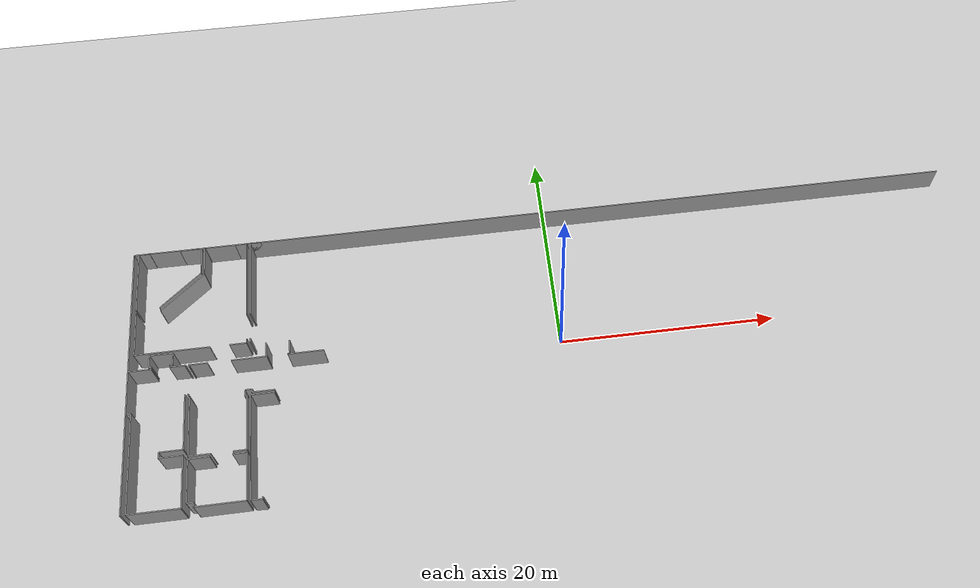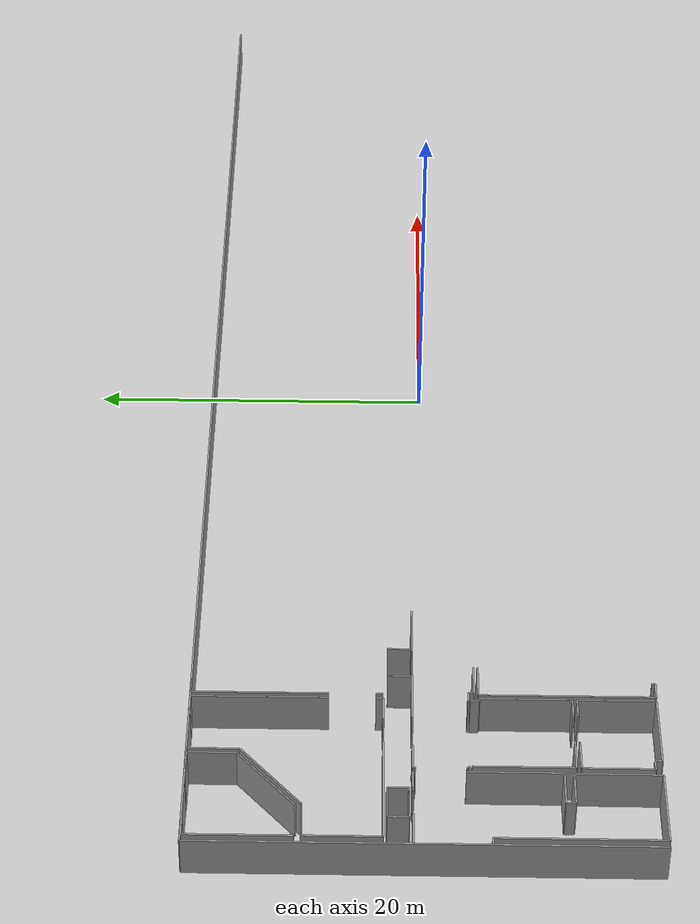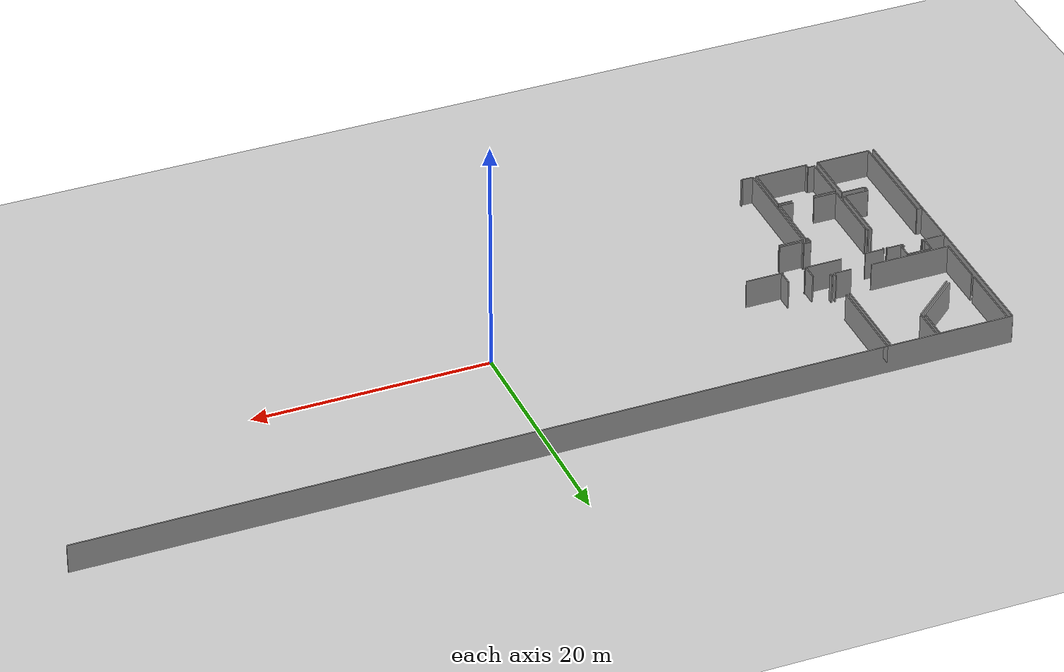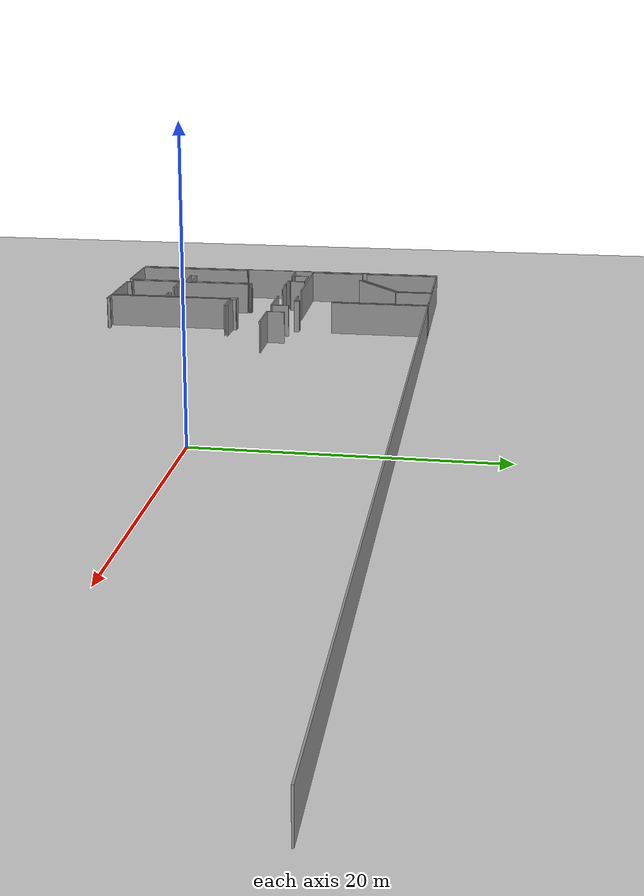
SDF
<sdf version="1.6">
 <world name="default">
  <model name="ground_plane">
   <static>1</static>
   <link name="link">
    <collision name="collision">
     <geometry><plane><normal>0 0 1</normal><size>100 100</size></plane></geometry>
     <surface><friction><ode><mu>100</mu><mu2>50</mu2></ode></friction></surface>
    </collision>
    <visual name="visual">
     <cast_shadows>0</cast_shadows>
     <geometry><plane><normal>0 0 1</normal><size>100 100</size></plane></geometry>
     <material>
      <script><uri>file://media/materials/scripts/gazebo.material</uri><name>Gazebo/Grey</name></script>
     </material>
    </visual>
   </link>
  </model>
  <model name="0510030966_A-40">
   <static>1</static>
   <link name="Wall_0">
    <collision name="Wall_0_Collision">
     <geometry><box><size>5.95988975398 0.1 2.5</size></box></geometry>
     <pose>2.97994487699 0 1.25 0 0 0</pose>
    </collision>
    <visual name="Wall_0_Visual">
     <pose>2.97994487699 0 1.25 0 0 0</pose>
     <geometry><box><size>5.95988975398 0.1 2.5</size></box></geometry>
     <material>
      <script><uri>file://media/materials/scripts/gazebo.material</uri><name>Gazebo/Grey</name></script>
      <ambient>1 1 1 1</ambient>
     </material>
    </visual>
    <pose>0.443397304815 -5.98224378596 0 0 0 1.57079632679</pose>
   </link>
   <link name="Wall_1">
    <collision name="Wall_1_Collision">
     <geometry><box><size>1.03069869051 0.1 2.5</size></box></geometry>
     <pose>0.515349345255 0 1.25 0 0 0</pose>
    </collision>
    <visual name="Wall_1_Visual">
     <pose>0.515349345255 0 1.25 0 0 0</pose>
     <geometry><box><size>1.03069869051 0.1 2.5</size></box></geometry>
     <material>
      <script><uri>file://media/materials/scripts/gazebo.material</uri><name>Gazebo/Grey</name></script>
      <ambient>1 1 1 1</ambient>
     </material>
    </visual>
    <pose>0.443397304815 -0.0223540319815 0 0 0 0.0</pose>
   </link>
   <link name="Wall_2">
    <collision name="Wall_2_Collision">
     <geometry><box><size>2.0100847167 0.1 2.5</size></box></geometry>
     <pose>1.00504235835 0 1.25 0 0 0</pose>
    </collision>
    <visual name="Wall_2_Visual">
     <pose>1.00504235835 0 1.25 0 0 0</pose>
     <geometry><box><size>2.0100847167 0.1 2.5</size></box></geometry>
     <material>
      <script><uri>file://media/materials/scripts/gazebo.material</uri><name>Gazebo/Grey</name></script>
      <ambient>1 1 1 1</ambient>
     </material>
    </visual>
    <pose>4.28016206673 -0.0223540319815 0 0 0 0.0</pose>
   </link>
   <link name="Wall_3">
    <collision name="Wall_3_Collision">
     <geometry><box><size>2.73633673301 0.1 2.5</size></box></geometry>
     <pose>1.3681683665 0 1.25 0 0 0</pose>
    </collision>
    <visual name="Wall_3_Visual">
     <pose>1.3681683665 0 1.25 0 0 0</pose>
     <geometry><box><size>2.73633673301 0.1 2.5</size></box></geometry>
     <material>
      <script><uri>file://media/materials/scripts/gazebo.material</uri><name>Gazebo/Grey</name></script>
      <ambient>1 1 1 1</ambient>
     </material>
    </visual>
    <pose>6.29024678343 -0.0223540319815 0 0 0 -1.57079632679</pose>
   </link>
   <link name="Wall_4">
    <collision name="Wall_4_Collision">
     <geometry><box><size>4.91385763163 0.1 2.5</size></box></geometry>
     <pose>2.45692881581 0 1.25 0 0 0</pose>
    </collision>
    <visual name="Wall_4_Visual">
     <pose>2.45692881581 0 1.25 0 0 0</pose>
     <geometry><box><size>4.91385763163 0.1 2.5</size></box></geometry>
     <material>
      <script><uri>file://media/materials/scripts/gazebo.material</uri><name>Gazebo/Grey</name></script>
      <ambient>1 1 1 1</ambient>
     </material>
    </visual>
    <pose>6.29024678343 -2.75869076499 0 0 0 -2.42257056231</pose>
   </link>
   <link name="Wall_5">
    <collision name="Wall_5_Collision">
     <geometry><box><size>4.35547991312 0.1 2.5</size></box></geometry>
     <pose>2.17773995656 0 1.25 0 0 0</pose>
    </collision>
    <visual name="Wall_5_Visual">
     <pose>2.17773995656 0 1.25 0 0 0</pose>
     <geometry><box><size>4.35547991312 0.1 2.5</size></box></geometry>
     <material>
      <script><uri>file://media/materials/scripts/gazebo.material</uri><name>Gazebo/Grey</name></script>
      <ambient>1 1 1 1</ambient>
     </material>
    </visual>
    <pose>0.461051909619 -10.6772255598 0 0 0 1.57079632679</pose>
   </link>
   <link name="Wall_6">
    <collision name="Wall_6_Collision">
     <geometry><box><size>5.20379099327 0.1 2.5</size></box></geometry>
     <pose>2.60189549664 0 1.25 0 0 0</pose>
    </collision>
    <visual name="Wall_6_Visual">
     <pose>2.60189549664 0 1.25 0 0 0</pose>
     <geometry><box><size>5.20379099327 0.1 2.5</size></box></geometry>
     <material>
      <script><uri>file://media/materials/scripts/gazebo.material</uri><name>Gazebo/Grey</name></script>
      <ambient>1 1 1 1</ambient>
     </material>
    </visual>
    <pose>2.6696556717 -6.32174564668 0 0 0 0.716931152923</pose>
   </link>
   <link name="Wall_7">
    <collision name="Wall_7_Collision">
     <geometry><box><size>2.89726036097 0.1 2.5</size></box></geometry>
     <pose>1.44863018048 0 1.25 0 0 0</pose>
    </collision>
    <visual name="Wall_7_Visual">
     <pose>1.44863018048 0 1.25 0 0 0</pose>
     <geometry><box><size>2.89726036097 0.1 2.5</size></box></geometry>
     <material>
      <script><uri>file://media/materials/scripts/gazebo.material</uri><name>Gazebo/Grey</name></script>
      <ambient>1 1 1 1</ambient>
     </material>
    </visual>
    <pose>6.59240724982 -2.90246783433 0 0 0 1.57079632679</pose>
   </link>
   <link name="Wall_8">
    <collision name="Wall_8_Collision">
     <geometry><box><size>0.0797632504795 0.1 2.5</size></box></geometry>
     <pose>0.0398816252397 0 1.25 0 0 0</pose>
    </collision>
    <visual name="Wall_8_Visual">
     <pose>0.0398816252397 0 1.25 0 0 0</pose>
     <geometry><box><size>0.0797632504795 0.1 2.5</size></box></geometry>
     <material>
      <script><uri>file://media/materials/scripts/gazebo.material</uri><name>Gazebo/Grey</name></script>
      <ambient>1 1 1 1</ambient>
     </material>
    </visual>
    <pose>6.59240724982 -0.00520747335933 0 0 0 0.0</pose>
   </link>
   <link name="Wall_9">
    <collision name="Wall_9_Collision">
     <geometry><box><size>1.0609274383 0.1 2.5</size></box></geometry>
     <pose>0.530463719152 0 1.25 0 0 0</pose>
    </collision>
    <visual name="Wall_9_Visual">
     <pose>0.530463719152 0 1.25 0 0 0</pose>
     <geometry><box><size>1.0609274383 0.1 2.5</size></box></geometry>
     <material>
      <script><uri>file://media/materials/scripts/gazebo.material</uri><name>Gazebo/Grey</name></script>
      <ambient>1 1 1 1</ambient>
     </material>
    </visual>
    <pose>9.45702564363 -0.00520747335933 0 0 0 0.0</pose>
   </link>
   <link name="Wall_10">
    <collision name="Wall_10_Collision">
     <geometry><box><size>7.66108239239 0.1 2.5</size></box></geometry>
     <pose>3.83054119619 0 1.25 0 0 0</pose>
    </collision>
    <visual name="Wall_10_Visual">
     <pose>3.83054119619 0 1.25 0 0 0</pose>
     <geometry><box><size>7.66108239239 0.1 2.5</size></box></geometry>
     <material>
      <script><uri>file://media/materials/scripts/gazebo.material</uri><name>Gazebo/Grey</name></script>
      <ambient>1 1 1 1</ambient>
     </material>
    </visual>
    <pose>10.5179530819 -0.00520747335933 0 0 0 -1.57079632679</pose>
   </link>
   <link name="Wall_11">
    <collision name="Wall_11_Collision">
     <geometry><box><size>0.422567411378 0.1 2.5</size></box></geometry>
     <pose>0.211283705689 0 1.25 0 0 0</pose>
    </collision>
    <visual name="Wall_11_Visual">
     <pose>0.211283705689 0 1.25 0 0 0</pose>
     <geometry><box><size>0.422567411378 0.1 2.5</size></box></geometry>
     <material>
      <script><uri>file://media/materials/scripts/gazebo.material</uri><name>Gazebo/Grey</name></script>
      <ambient>1 1 1 1</ambient>
     </material>
    </visual>
    <pose>10.5179530819 -10.2400518207 0 0 0 -1.57079632679</pose>
   </link>
   <link name="Wall_12">
    <collision name="Wall_12_Collision">
     <geometry><box><size>1.52896498292 0.1 2.5</size></box></geometry>
     <pose>0.764482491458 0 1.25 0 0 0</pose>
    </collision>
    <visual name="Wall_12_Visual">
     <pose>0.764482491458 0 1.25 0 0 0</pose>
     <geometry><box><size>1.52896498292 0.1 2.5</size></box></geometry>
     <material>
      <script><uri>file://media/materials/scripts/gazebo.material</uri><name>Gazebo/Grey</name></script>
      <ambient>1 1 1 1</ambient>
     </material>
    </visual>
    <pose>10.5179530819 -10.6626192321 0 0 0 3.14159265359</pose>
   </link>
   <link name="Wall_13">
    <collision name="Wall_13_Collision">
     <geometry><box><size>6.77735179941 0.1 2.5</size></box></geometry>
     <pose>3.3886758997 0 1.25 0 0 0</pose>
    </collision>
    <visual name="Wall_13_Visual">
     <pose>3.3886758997 0 1.25 0 0 0</pose>
     <geometry><box><size>6.77735179941 0.1 2.5</size></box></geometry>
     <material>
      <script><uri>file://media/materials/scripts/gazebo.material</uri><name>Gazebo/Grey</name></script>
      <ambient>1 1 1 1</ambient>
     </material>
    </visual>
    <pose>7.23838796947 -10.6626192321 0 0 0 -3.13943748451</pose>
   </link>
   <link name="Wall_14">
    <collision name="Wall_14_Collision">
     <geometry><box><size>0.24906964043 0.1 2.5</size></box></geometry>
     <pose>0.124534820215 0 1.25 0 0 0</pose>
    </collision>
    <visual name="Wall_14_Visual">
     <pose>0.124534820215 0 1.25 0 0 0</pose>
     <geometry><box><size>0.24906964043 0.1 2.5</size></box></geometry>
     <material>
      <script><uri>file://media/materials/scripts/gazebo.material</uri><name>Gazebo/Grey</name></script>
      <ambient>1 1 1 1</ambient>
     </material>
    </visual>
    <pose>1.82896625303 -12.057206 0 0 0 0.0</pose>
   </link>
   <link name="Wall_15">
    <collision name="Wall_15_Collision">
     <geometry><box><size>0.258849529422 0.1 2.5</size></box></geometry>
     <pose>0.129424764711 0 1.25 0 0 0</pose>
    </collision>
    <visual name="Wall_15_Visual">
     <pose>0.129424764711 0 1.25 0 0 0</pose>
     <geometry><box><size>0.258849529422 0.1 2.5</size></box></geometry>
     <material>
      <script><uri>file://media/materials/scripts/gazebo.material</uri><name>Gazebo/Grey</name></script>
      <ambient>1 1 1 1</ambient>
     </material>
    </visual>
    <pose>3.67050664905 -12.057206 0 0 0 0.0</pose>
   </link>
   <link name="Wall_16">
    <collision name="Wall_16_Collision">
     <geometry><box><size>1.17828610621 0.1 2.5</size></box></geometry>
     <pose>0.589143053104 0 1.25 0 0 0</pose>
    </collision>
    <visual name="Wall_16_Visual">
     <pose>0.589143053104 0 1.25 0 0 0</pose>
     <geometry><box><size>1.17828610621 0.1 2.5</size></box></geometry>
     <material>
      <script><uri>file://media/materials/scripts/gazebo.material</uri><name>Gazebo/Grey</name></script>
      <ambient>1 1 1 1</ambient>
     </material>
    </visual>
    <pose>3.92935617848 -12.057206 0 0 0 1.57079632679</pose>
   </link>
   <link name="Wall_17">
    <collision name="Wall_17_Collision">
     <geometry><box><size>2.07105025847 0.1 2.5</size></box></geometry>
     <pose>1.03552512923 0 1.25 0 0 0</pose>
    </collision>
    <visual name="Wall_17_Visual">
     <pose>1.03552512923 0 1.25 0 0 0</pose>
     <geometry><box><size>2.07105025847 0.1 2.5</size></box></geometry>
     <material>
      <script><uri>file://media/materials/scripts/gazebo.material</uri><name>Gazebo/Grey</name></script>
      <ambient>1 1 1 1</ambient>
     </material>
    </visual>
    <pose>3.92935617848 -10.8789198938 0 0 0 3.14159265359</pose>
   </link>
   <link name="Wall_18">
    <collision name="Wall_18_Collision">
     <geometry><box><size>1.17865133273 0.1 2.5</size></box></geometry>
     <pose>0.589325666363 0 1.25 0 0 0</pose>
    </collision>
    <visual name="Wall_18_Visual">
     <pose>0.589325666363 0 1.25 0 0 0</pose>
     <geometry><box><size>1.17865133273 0.1 2.5</size></box></geometry>
     <material>
      <script><uri>file://media/materials/scripts/gazebo.material</uri><name>Gazebo/Grey</name></script>
      <ambient>1 1 1 1</ambient>
     </material>
    </visual>
    <pose>1.85830592001 -10.8789198938 0 0 0 -1.59569147349</pose>
   </link>
   <link name="Wall_19">
    <collision name="Wall_19_Collision">
     <geometry><box><size>4.5965478262 0.1 2.5</size></box></geometry>
     <pose>2.2982739131 0 1.25 0 0 0</pose>
    </collision>
    <visual name="Wall_19_Visual">
     <pose>2.2982739131 0 1.25 0 0 0</pose>
     <geometry><box><size>4.5965478262 0.1 2.5</size></box></geometry>
     <material>
      <script><uri>file://media/materials/scripts/gazebo.material</uri><name>Gazebo/Grey</name></script>
      <ambient>1 1 1 1</ambient>
     </material>
    </visual>
    <pose>5.05759973582 -25.7020563169 0 0 0 3.14159265359</pose>
   </link>
   <link name="Wall_20">
    <collision name="Wall_20_Collision">
     <geometry><box><size>9.26295200234 0.1 2.5</size></box></geometry>
     <pose>4.63147600117 0 1.25 0 0 0</pose>
    </collision>
    <visual name="Wall_20_Visual">
     <pose>4.63147600117 0 1.25 0 0 0</pose>
     <geometry><box><size>9.26295200234 0.1 2.5</size></box></geometry>
     <material>
      <script><uri>file://media/materials/scripts/gazebo.material</uri><name>Gazebo/Grey</name></script>
      <ambient>1 1 1 1</ambient>
     </material>
    </visual>
    <pose>0.461051909619 -25.7020563169 0 0 0 1.57079632679</pose>
   </link>
   <link name="Wall_21">
    <collision name="Wall_21_Collision">
     <geometry><box><size>0.461051909619 0.1 2.5</size></box></geometry>
     <pose>0.230525954809 0 1.25 0 0 0</pose>
    </collision>
    <visual name="Wall_21_Visual">
     <pose>0.230525954809 0 1.25 0 0 0</pose>
     <geometry><box><size>0.461051909619 0.1 2.5</size></box></geometry>
     <material>
      <script><uri>file://media/materials/scripts/gazebo.material</uri><name>Gazebo/Grey</name></script>
      <ambient>1 1 1 1</ambient>
     </material>
    </visual>
    <pose>0.461051909619 -16.4391043146 0 0 0 3.14159265359</pose>
   </link>
   <link name="Wall_22">
    <collision name="Wall_22_Collision">
     <geometry><box><size>2.06254048493 0.1 2.5</size></box></geometry>
     <pose>1.03127024247 0 1.25 0 0 0</pose>
    </collision>
    <visual name="Wall_22_Visual">
     <pose>1.03127024247 0 1.25 0 0 0</pose>
     <geometry><box><size>2.06254048493 0.1 2.5</size></box></geometry>
     <material>
      <script><uri>file://media/materials/scripts/gazebo.material</uri><name>Gazebo/Grey</name></script>
      <ambient>1 1 1 1</ambient>
     </material>
    </visual>
    <pose>0.0 -12.2684261999 0 0 0 0.0</pose>
   </link>
   <link name="Wall_23">
    <collision name="Wall_23_Collision">
     <geometry><box><size>1.42075114628 0.1 2.5</size></box></geometry>
     <pose>0.71037557314 0 1.25 0 0 0</pose>
    </collision>
    <visual name="Wall_23_Visual">
     <pose>0.71037557314 0 1.25 0 0 0</pose>
     <geometry><box><size>1.42075114628 0.1 2.5</size></box></geometry>
     <material>
      <script><uri>file://media/materials/scripts/gazebo.material</uri><name>Gazebo/Grey</name></script>
      <ambient>1 1 1 1</ambient>
     </material>
    </visual>
    <pose>3.68536699986 -12.2684261999 0 0 0 0.0</pose>
   </link>
   <link name="Wall_24">
    <collision name="Wall_24_Collision">
     <geometry><box><size>0.0947506128307 0.1 2.5</size></box></geometry>
     <pose>0.0473753064154 0 1.25 0 0 0</pose>
    </collision>
    <visual name="Wall_24_Visual">
     <pose>0.0473753064154 0 1.25 0 0 0</pose>
     <geometry><box><size>0.0947506128307 0.1 2.5</size></box></geometry>
     <material>
      <script><uri>file://media/materials/scripts/gazebo.material</uri><name>Gazebo/Grey</name></script>
      <ambient>1 1 1 1</ambient>
     </material>
    </visual>
    <pose>5.10611814614 -12.2684261999 0 0 0 -1.57079632679</pose>
   </link>
   <link name="Wall_25">
    <collision name="Wall_25_Collision">
     <geometry><box><size>5.26170728919 0.1 2.5</size></box></geometry>
     <pose>2.6308536446 0 1.25 0 0 0</pose>
    </collision>
    <visual name="Wall_25_Visual">
     <pose>2.6308536446 0 1.25 0 0 0</pose>
     <geometry><box><size>5.26170728919 0.1 2.5</size></box></geometry>
     <material>
      <script><uri>file://media/materials/scripts/gazebo.material</uri><name>Gazebo/Grey</name></script>
      <ambient>1 1 1 1</ambient>
     </material>
    </visual>
    <pose>5.10611814614 -15.1297422936 0 0 0 -1.57079632679</pose>
   </link>
   <link name="Wall_26">
    <collision name="Wall_26_Collision">
     <geometry><box><size>2.10991579135 0.1 2.5</size></box></geometry>
     <pose>1.05495789567 0 1.25 0 0 0</pose>
    </collision>
    <visual name="Wall_26_Visual">
     <pose>1.05495789567 0 1.25 0 0 0</pose>
     <geometry><box><size>2.10991579135 0.1 2.5</size></box></geometry>
     <material>
      <script><uri>file://media/materials/scripts/gazebo.material</uri><name>Gazebo/Grey</name></script>
      <ambient>1 1 1 1</ambient>
     </material>
    </visual>
    <pose>5.10611814614 -20.3914495828 0 0 0 3.14159265359</pose>
   </link>
   <link name="Wall_27">
    <collision name="Wall_27_Collision">
     <geometry><box><size>0.528114005563 0.1 2.5</size></box></geometry>
     <pose>0.264057002782 0 1.25 0 0 0</pose>
    </collision>
    <visual name="Wall_27_Visual">
     <pose>0.264057002782 0 1.25 0 0 0</pose>
     <geometry><box><size>0.528114005563 0.1 2.5</size></box></geometry>
     <material>
      <script><uri>file://media/materials/scripts/gazebo.material</uri><name>Gazebo/Grey</name></script>
      <ambient>1 1 1 1</ambient>
     </material>
    </visual>
    <pose>2.99620235479 -20.3914495828 0 0 0 -1.57079632679</pose>
   </link>
   <link name="Wall_28">
    <collision name="Wall_28_Collision">
     <geometry><box><size>2.07435255865 0.1 2.5</size></box></geometry>
     <pose>1.03717627932 0 1.25 0 0 0</pose>
    </collision>
    <visual name="Wall_28_Visual">
     <pose>1.03717627932 0 1.25 0 0 0</pose>
     <geometry><box><size>2.07435255865 0.1 2.5</size></box></geometry>
     <material>
      <script><uri>file://media/materials/scripts/gazebo.material</uri><name>Gazebo/Grey</name></script>
      <ambient>1 1 1 1</ambient>
     </material>
    </visual>
    <pose>2.99620235479 -20.9195635883 0 0 0 0.0</pose>
   </link>
   <link name="Wall_29">
    <collision name="Wall_29_Collision">
     <geometry><box><size>4.78251027554 0.1 2.5</size></box></geometry>
     <pose>2.39125513777 0 1.25 0 0 0</pose>
    </collision>
    <visual name="Wall_29_Visual">
     <pose>2.39125513777 0 1.25 0 0 0</pose>
     <geometry><box><size>4.78251027554 0.1 2.5</size></box></geometry>
     <material>
      <script><uri>file://media/materials/scripts/gazebo.material</uri><name>Gazebo/Grey</name></script>
      <ambient>1 1 1 1</ambient>
     </material>
    </visual>
    <pose>5.07055491344 -20.9195635883 0 0 0 -1.57350519572</pose>
   </link>
   <link name="Wall_30">
    <collision name="Wall_30_Collision">
     <geometry><box><size>0.0884000355632 0.1 2.5</size></box></geometry>
     <pose>0.0442000177816 0 1.25 0 0 0</pose>
    </collision>
    <visual name="Wall_30_Visual">
     <pose>0.0442000177816 0 1.25 0 0 0</pose>
     <geometry><box><size>0.0884000355632 0.1 2.5</size></box></geometry>
     <material>
      <script><uri>file://media/materials/scripts/gazebo.material</uri><name>Gazebo/Grey</name></script>
      <ambient>1 1 1 1</ambient>
     </material>
    </visual>
    <pose>5.39659355035 -15.2363049801 0 0 0 1.57079632679</pose>
   </link>
   <link name="Wall_31">
    <collision name="Wall_31_Collision">
     <geometry><box><size>0.15457305069 0.1 2.5</size></box></geometry>
     <pose>0.0772865253452 0 1.25 0 0 0</pose>
    </collision>
    <visual name="Wall_31_Visual">
     <pose>0.0772865253452 0 1.25 0 0 0</pose>
     <geometry><box><size>0.15457305069 0.1 2.5</size></box></geometry>
     <material>
      <script><uri>file://media/materials/scripts/gazebo.material</uri><name>Gazebo/Grey</name></script>
      <ambient>1 1 1 1</ambient>
     </material>
    </visual>
    <pose>5.39659355035 -12.410044073 0 0 0 1.57079632679</pose>
   </link>
   <link name="Wall_32">
    <collision name="Wall_32_Collision">
     <geometry><box><size>1.64035410819 0.1 2.5</size></box></geometry>
     <pose>0.820177054094 0 1.25 0 0 0</pose>
    </collision>
    <visual name="Wall_32_Visual">
     <pose>0.820177054094 0 1.25 0 0 0</pose>
     <geometry><box><size>1.64035410819 0.1 2.5</size></box></geometry>
     <material>
      <script><uri>file://media/materials/scripts/gazebo.material</uri><name>Gazebo/Grey</name></script>
      <ambient>1 1 1 1</ambient>
     </material>
    </visual>
    <pose>5.39659355035 -12.2554710223 0 0 0 0.0</pose>
   </link>
   <link name="Wall_33">
    <collision name="Wall_33_Collision">
     <geometry><box><size>3.19802370035 0.1 2.5</size></box></geometry>
     <pose>1.59901185018 0 1.25 0 0 0</pose>
    </collision>
    <visual name="Wall_33_Visual">
     <pose>1.59901185018 0 1.25 0 0 0</pose>
     <geometry><box><size>3.19802370035 0.1 2.5</size></box></geometry>
     <material>
      <script><uri>file://media/materials/scripts/gazebo.material</uri><name>Gazebo/Grey</name></script>
      <ambient>1 1 1 1</ambient>
     </material>
    </visual>
    <pose>9.12438240636 -12.2554710223 0 0 0 0.0</pose>
   </link>
   <link name="Wall_34">
    <collision name="Wall_34_Collision">
     <geometry><box><size>3.2471771684 0.1 2.5</size></box></geometry>
     <pose>1.6235885842 0 1.25 0 0 0</pose>
    </collision>
    <visual name="Wall_34_Visual">
     <pose>1.6235885842 0 1.25 0 0 0</pose>
     <geometry><box><size>3.2471771684 0.1 2.5</size></box></geometry>
     <material>
      <script><uri>file://media/materials/scripts/gazebo.material</uri><name>Gazebo/Grey</name></script>
      <ambient>1 1 1 1</ambient>
     </material>
    </visual>
    <pose>14.1852844424 -12.2554710223 0 0 0 0.0</pose>
   </link>
   <link name="Wall_89">
    <collision name="Wall_89_Collision">
     <geometry><box><size>1.99408126199 0.1 2.5</size></box></geometry>
     <pose>0.997040630993 0 1.25 0 0 0</pose>
    </collision>
    <visual name="Wall_89_Visual">
     <pose>0.997040630993 0 1.25 0 0 0</pose>
     <geometry><box><size>1.99408126199 0.1 2.5</size></box></geometry>
     <material>
      <script><uri>file://media/materials/scripts/gazebo.material</uri><name>Gazebo/Grey</name></script>
      <ambient>1 1 1 1</ambient>
     </material>
    </visual>
    <pose>12.9932810893 -15.6567131952 0 0 0 3.14159265359</pose>
   </link>
   <link name="Wall_90">
    <collision name="Wall_90_Collision">
     <geometry><box><size>0.297207016118 0.1 2.5</size></box></geometry>
     <pose>0.148603508059 0 1.25 0 0 0</pose>
    </collision>
    <visual name="Wall_90_Visual">
     <pose>0.148603508059 0 1.25 0 0 0</pose>
     <geometry><box><size>0.297207016118 0.1 2.5</size></box></geometry>
     <material>
      <script><uri>file://media/materials/scripts/gazebo.material</uri><name>Gazebo/Grey</name></script>
      <ambient>1 1 1 1</ambient>
     </material>
    </visual>
    <pose>10.9991998273 -15.6567131952 0 0 0 1.57079632679</pose>
   </link>
   <link name="Wall_91">
    <collision name="Wall_91_Collision">
     <geometry><box><size>0.609655417677 0.1 2.5</size></box></geometry>
     <pose>0.304827708839 0 1.25 0 0 0</pose>
    </collision>
    <visual name="Wall_91_Visual">
     <pose>0.304827708839 0 1.25 0 0 0</pose>
     <geometry><box><size>0.609655417677 0.1 2.5</size></box></geometry>
     <material>
      <script><uri>file://media/materials/scripts/gazebo.material</uri><name>Gazebo/Grey</name></script>
      <ambient>1 1 1 1</ambient>
     </material>
    </visual>
    <pose>10.9991998273 -15.3595061791 0 0 0 3.14159265359</pose>
   </link>
   <link name="Wall_92">
    <collision name="Wall_92_Collision">
     <geometry><box><size>0.169104031957 0.1 2.5</size></box></geometry>
     <pose>0.0845520159785 0 1.25 0 0 0</pose>
    </collision>
    <visual name="Wall_92_Visual">
     <pose>0.0845520159785 0 1.25 0 0 0</pose>
     <geometry><box><size>0.169104031957 0.1 2.5</size></box></geometry>
     <material>
      <script><uri>file://media/materials/scripts/gazebo.material</uri><name>Gazebo/Grey</name></script>
      <ambient>1 1 1 1</ambient>
     </material>
    </visual>
    <pose>5.51242807971 -15.3595061791 0 0 0 2.32538596293</pose>
   </link>
   <link name="Wall_93">
    <collision name="Wall_93_Collision">
     <geometry><box><size>5.62343617035 0.1 2.5</size></box></geometry>
     <pose>2.81171808517 0 1.25 0 0 0</pose>
    </collision>
    <visual name="Wall_93_Visual">
     <pose>2.81171808517 0 1.25 0 0 0</pose>
     <geometry><box><size>5.62343617035 0.1 2.5</size></box></geometry>
     <material>
      <script><uri>file://media/materials/scripts/gazebo.material</uri><name>Gazebo/Grey</name></script>
      <ambient>1 1 1 1</ambient>
     </material>
    </visual>
    <pose>5.51484129907 -21.0623245653 0 0 0 1.57079632679</pose>
   </link>
   <link name="Wall_94">
    <collision name="Wall_94_Collision">
     <geometry><box><size>0.4943289345 0.1 2.5</size></box></geometry>
     <pose>0.24716446725 0 1.25 0 0 0</pose>
    </collision>
    <visual name="Wall_94_Visual">
     <pose>0.24716446725 0 1.25 0 0 0</pose>
     <geometry><box><size>0.4943289345 0.1 2.5</size></box></geometry>
     <material>
      <script><uri>file://media/materials/scripts/gazebo.material</uri><name>Gazebo/Grey</name></script>
      <ambient>1 1 1 1</ambient>
     </material>
    </visual>
    <pose>10.372397851 -15.438888395 0 0 0 -1.57079632679</pose>
   </link>
   <link name="Wall_95">
    <collision name="Wall_95_Collision">
     <geometry><box><size>0.187723064027 0.1 2.5</size></box></geometry>
     <pose>0.0938615320133 0 1.25 0 0 0</pose>
    </collision>
    <visual name="Wall_95_Visual">
     <pose>0.0938615320133 0 1.25 0 0 0</pose>
     <geometry><box><size>0.187723064027 0.1 2.5</size></box></geometry>
     <material>
      <script><uri>file://media/materials/scripts/gazebo.material</uri><name>Gazebo/Grey</name></script>
      <ambient>1 1 1 1</ambient>
     </material>
    </visual>
    <pose>10.372397851 -15.9332173295 0 0 0 0.0</pose>
   </link>
   <link name="Wall_96">
    <collision name="Wall_96_Collision">
     <geometry><box><size>5.14180839038 0.1 2.5</size></box></geometry>
     <pose>2.57090419519 0 1.25 0 0 0</pose>
    </collision>
    <visual name="Wall_96_Visual">
     <pose>2.57090419519 0 1.25 0 0 0</pose>
     <geometry><box><size>5.14180839038 0.1 2.5</size></box></geometry>
     <material>
      <script><uri>file://media/materials/scripts/gazebo.material</uri><name>Gazebo/Grey</name></script>
      <ambient>1 1 1 1</ambient>
     </material>
    </visual>
    <pose>10.560120915 -15.9332173295 0 0 0 -1.57079632679</pose>
   </link>
   <link name="Wall_97">
    <collision name="Wall_97_Collision">
     <geometry><box><size>1.2247723318 0.1 2.5</size></box></geometry>
     <pose>0.612386165902 0 1.25 0 0 0</pose>
    </collision>
    <visual name="Wall_97_Visual">
     <pose>0.612386165902 0 1.25 0 0 0</pose>
     <geometry><box><size>1.2247723318 0.1 2.5</size></box></geometry>
     <material>
      <script><uri>file://media/materials/scripts/gazebo.material</uri><name>Gazebo/Grey</name></script>
      <ambient>1 1 1 1</ambient>
     </material>
    </visual>
    <pose>10.560120915 -21.0750257198 0 0 0 3.14159265359</pose>
   </link>
   <link name="Wall_98">
    <collision name="Wall_98_Collision">
     <geometry><box><size>1.96643376377 0.1 2.5</size></box></geometry>
     <pose>0.983216881887 0 1.25 0 0 0</pose>
    </collision>
    <visual name="Wall_98_Visual">
     <pose>0.983216881887 0 1.25 0 0 0</pose>
     <geometry><box><size>1.96643376377 0.1 2.5</size></box></geometry>
     <material>
      <script><uri>file://media/materials/scripts/gazebo.material</uri><name>Gazebo/Grey</name></script>
      <ambient>1 1 1 1</ambient>
     </material>
    </visual>
    <pose>7.48123404417 -21.0750257198 0 0 0 3.1351336296</pose>
   </link>
   <link name="Wall_99">
    <collision name="Wall_99_Collision">
     <geometry><box><size>0.393735790583 0.1 2.5</size></box></geometry>
     <pose>0.196867895292 0 1.25 0 0 0</pose>
    </collision>
    <visual name="Wall_99_Visual">
     <pose>0.196867895292 0 1.25 0 0 0</pose>
     <geometry><box><size>0.393735790583 0.1 2.5</size></box></geometry>
     <material>
      <script><uri>file://media/materials/scripts/gazebo.material</uri><name>Gazebo/Grey</name></script>
      <ambient>1 1 1 1</ambient>
     </material>
    </visual>
    <pose>6.08855244942 -25.7119632175 0 0 0 1.57079632679</pose>
   </link>
   <link name="Wall_100">
    <collision name="Wall_100_Collision">
     <geometry><box><size>0.6049559905 0.1 2.5</size></box></geometry>
     <pose>0.30247799525 0 1.25 0 0 0</pose>
    </collision>
    <visual name="Wall_100_Visual">
     <pose>0.30247799525 0 1.25 0 0 0</pose>
     <geometry><box><size>0.6049559905 0.1 2.5</size></box></geometry>
     <material>
      <script><uri>file://media/materials/scripts/gazebo.material</uri><name>Gazebo/Grey</name></script>
      <ambient>1 1 1 1</ambient>
     </material>
    </visual>
    <pose>6.08855244942 -25.3182274269 0 0 0 3.14159265359</pose>
   </link>
   <link name="Wall_101">
    <collision name="Wall_101_Collision">
     <geometry><box><size>3.98562229307 0.1 2.5</size></box></geometry>
     <pose>1.99281114653 0 1.25 0 0 0</pose>
    </collision>
    <visual name="Wall_101_Visual">
     <pose>1.99281114653 0 1.25 0 0 0</pose>
     <geometry><box><size>3.98562229307 0.1 2.5</size></box></geometry>
     <material>
      <script><uri>file://media/materials/scripts/gazebo.material</uri><name>Gazebo/Grey</name></script>
      <ambient>1 1 1 1</ambient>
     </material>
    </visual>
    <pose>5.48359645892 -25.3182274269 0 0 0 1.57079632679</pose>
   </link>
   <link name="Wall_102">
    <collision name="Wall_102_Collision">
     <geometry><box><size>1.90847548042 0.1 2.5</size></box></geometry>
     <pose>0.954237740211 0 1.25 0 0 0</pose>
    </collision>
    <visual name="Wall_102_Visual">
     <pose>0.954237740211 0 1.25 0 0 0</pose>
     <geometry><box><size>1.90847548042 0.1 2.5</size></box></geometry>
     <material>
      <script><uri>file://media/materials/scripts/gazebo.material</uri><name>Gazebo/Grey</name></script>
      <ambient>1 1 1 1</ambient>
     </material>
    </visual>
    <pose>5.48359645892 -21.3326051338 0 0 0 0.0</pose>
   </link>
   <link name="Wall_103">
    <collision name="Wall_103_Collision">
     <geometry><box><size>1.22159704317 0.1 2.5</size></box></geometry>
     <pose>0.610798521586 0 1.25 0 0 0</pose>
    </collision>
    <visual name="Wall_103_Visual">
     <pose>0.610798521586 0 1.25 0 0 0</pose>
     <geometry><box><size>1.22159704317 0.1 2.5</size></box></geometry>
     <material>
      <script><uri>file://media/materials/scripts/gazebo.material</uri><name>Gazebo/Grey</name></script>
      <ambient>1 1 1 1</ambient>
     </material>
    </visual>
    <pose>9.32315547483 -21.3326051338 0 0 0 0.0</pose>
   </link>
   <link name="Wall_104">
    <collision name="Wall_104_Collision">
     <geometry><box><size>4.36398968666 0.1 2.5</size></box></geometry>
     <pose>2.18199484333 0 1.25 0 0 0</pose>
    </collision>
    <visual name="Wall_104_Visual">
     <pose>2.18199484333 0 1.25 0 0 0</pose>
     <geometry><box><size>4.36398968666 0.1 2.5</size></box></geometry>
     <material>
      <script><uri>file://media/materials/scripts/gazebo.material</uri><name>Gazebo/Grey</name></script>
      <ambient>1 1 1 1</ambient>
     </material>
    </visual>
    <pose>10.544752518 -21.3326051338 0 0 0 -1.57079632679</pose>
   </link>
   <link name="Wall_105">
    <collision name="Wall_105_Collision">
     <geometry><box><size>4.45622656952 0.1 2.5</size></box></geometry>
     <pose>2.22811328476 0 1.25 0 0 0</pose>
    </collision>
    <visual name="Wall_105_Visual">
     <pose>2.22811328476 0 1.25 0 0 0</pose>
     <geometry><box><size>4.45622656952 0.1 2.5</size></box></geometry>
     <material>
      <script><uri>file://media/materials/scripts/gazebo.material</uri><name>Gazebo/Grey</name></script>
      <ambient>1 1 1 1</ambient>
     </material>
    </visual>
    <pose>10.544752518 -25.6965948205 0 0 0 -3.13814389998</pose>
   </link>
   <link name="Wall_106">
    <collision name="Wall_106_Collision">
     <geometry><box><size>0.10897590591 0.1 2.5</size></box></geometry>
     <pose>0.0544879529549 0 1.25 0 0 0</pose>
    </collision>
    <visual name="Wall_106_Visual">
     <pose>0.0544879529549 0 1.25 0 0 0</pose>
     <geometry><box><size>0.10897590591 0.1 2.5</size></box></geometry>
     <material>
      <script><uri>file://media/materials/scripts/gazebo.material</uri><name>Gazebo/Grey</name></script>
      <ambient>1 1 1 1</ambient>
     </material>
    </visual>
    <pose>12.2421348101 -12.219526755 0 0 0 0.0</pose>
   </link>
   <link name="Wall_107">
    <collision name="Wall_107_Collision">
     <geometry><box><size>0.144031092426 0.1 2.5</size></box></geometry>
     <pose>0.0720155462131 0 1.25 0 0 0</pose>
    </collision>
    <visual name="Wall_107_Visual">
     <pose>0.0720155462131 0 1.25 0 0 0</pose>
     <geometry><box><size>0.144031092426 0.1 2.5</size></box></geometry>
     <material>
      <script><uri>file://media/materials/scripts/gazebo.material</uri><name>Gazebo/Grey</name></script>
      <ambient>1 1 1 1</ambient>
     </material>
    </visual>
    <pose>14.2134810054 -12.219526755 0 0 0 0.0</pose>
   </link>
   <link name="Wall_108">
    <collision name="Wall_108_Collision">
     <geometry><box><size>1.34556031143 0.1 2.5</size></box></geometry>
     <pose>0.672780155716 0 1.25 0 0 0</pose>
    </collision>
    <visual name="Wall_108_Visual">
     <pose>0.672780155716 0 1.25 0 0 0</pose>
     <geometry><box><size>1.34556031143 0.1 2.5</size></box></geometry>
     <material>
      <script><uri>file://media/materials/scripts/gazebo.material</uri><name>Gazebo/Grey</name></script>
      <ambient>1 1 1 1</ambient>
     </material>
    </visual>
    <pose>14.3575120978 -12.219526755 0 0 0 1.57079632679</pose>
   </link>
   <link name="Wall_110">
    <collision name="Wall_110_Collision">
     <geometry><box><size>1.34556270923 0.1 2.5</size></box></geometry>
     <pose>0.672781354616 0 1.25 0 0 0</pose>
    </collision>
    <visual name="Wall_110_Visual">
     <pose>0.672781354616 0 1.25 0 0 0</pose>
     <geometry><box><size>1.34556270923 0.1 2.5</size></box></geometry>
     <material>
      <script><uri>file://media/materials/scripts/gazebo.material</uri><name>Gazebo/Grey</name></script>
      <ambient>1 1 1 1</ambient>
     </material>
    </visual>
    <pose>12.244675041 -10.8739664435 0 0 0 -1.57268418561</pose>
   </link>
   <link name="Wall_111">
    <collision name="Wall_111_Collision">
     <geometry><box><size>9.79627348126 0.1 2.5</size></box></geometry>
     <pose>4.89813674063 0 1.25 0 0 0</pose>
    </collision>
    <visual name="Wall_111_Visual">
     <pose>4.89813674063 0 1.25 0 0 0</pose>
     <geometry><box><size>9.79627348126 0.1 2.5</size></box></geometry>
     <material>
      <script><uri>file://media/materials/scripts/gazebo.material</uri><name>Gazebo/Grey</name></script>
      <ambient>1 1 1 1</ambient>
     </material>
    </visual>
    <pose>10.8405624071 -25.6976109128 0 0 0 1.57079632679</pose>
   </link>
   <link name="Wall_112">
    <collision name="Wall_112_Collision">
     <geometry><box><size>2.12045774961 0.1 2.5</size></box></geometry>
     <pose>1.0602288748 0 1.25 0 0 0</pose>
    </collision>
    <visual name="Wall_112_Visual">
     <pose>1.0602288748 0 1.25 0 0 0</pose>
     <geometry><box><size>2.12045774961 0.1 2.5</size></box></geometry>
     <material>
      <script><uri>file://media/materials/scripts/gazebo.material</uri><name>Gazebo/Grey</name></script>
      <ambient>1 1 1 1</ambient>
     </material>
    </visual>
    <pose>10.8405624071 -15.9013374316 0 0 0 0.0</pose>
   </link>
   <link name="Wall_117">
    <collision name="Wall_117_Collision">
     <geometry><box><size>0.218586869546 0.1 2.5</size></box></geometry>
     <pose>0.109293434773 0 1.25 0 0 0</pose>
    </collision>
    <visual name="Wall_117_Visual">
     <pose>0.109293434773 0 1.25 0 0 0</pose>
     <geometry><box><size>0.218586869546 0.1 2.5</size></box></geometry>
     <material>
      <script><uri>file://media/materials/scripts/gazebo.material</uri><name>Gazebo/Grey</name></script>
      <ambient>1 1 1 1</ambient>
     </material>
    </visual>
    <pose>11.8713881092 -25.5088717564 0 0 0 -1.57079632679</pose>
   </link>
   <link name="Wall_118">
    <collision name="Wall_118_Collision">
     <geometry><box><size>1.03125773403 0.1 2.5</size></box></geometry>
     <pose>0.515628867016 0 1.25 0 0 0</pose>
    </collision>
    <visual name="Wall_118_Visual">
     <pose>0.515628867016 0 1.25 0 0 0</pose>
     <geometry><box><size>1.03125773403 0.1 2.5</size></box></geometry>
     <material>
      <script><uri>file://media/materials/scripts/gazebo.material</uri><name>Gazebo/Grey</name></script>
      <ambient>1 1 1 1</ambient>
     </material>
    </visual>
    <pose>11.8713881092 -25.727458626 0 0 0 3.11264559121</pose>
   </link>
   <link name="Wall_309">
    <collision name="Wall_309_Collision">
     <geometry><box><size>0.39437084831 0.1 2.5</size></box></geometry>
     <pose>0.197185424155 0 1.25 0 0 0</pose>
    </collision>
    <visual name="Wall_309_Visual">
     <pose>0.197185424155 0 1.25 0 0 0</pose>
     <geometry><box><size>0.39437084831 0.1 2.5</size></box></geometry>
     <material>
      <script><uri>file://media/materials/scripts/gazebo.material</uri><name>Gazebo/Grey</name></script>
      <ambient>1 1 1 1</ambient>
     </material>
    </visual>
    <pose>10.8461509151 -10.6480129044 0 0 0 1.57079632679</pose>
   </link>
   <link name="Wall_310">
    <collision name="Wall_310_Collision">
     <geometry><box><size>7.6499053764 0.1 2.5</size></box></geometry>
     <pose>3.8249526882 0 1.25 0 0 0</pose>
    </collision>
    <visual name="Wall_310_Visual">
     <pose>3.8249526882 0 1.25 0 0 0</pose>
     <geometry><box><size>7.6499053764 0.1 2.5</size></box></geometry>
     <material>
      <script><uri>file://media/materials/scripts/gazebo.material</uri><name>Gazebo/Grey</name></script>
      <ambient>1 1 1 1</ambient>
     </material>
    </visual>
    <pose>10.8461509151 -7.6499053764 0 0 0 1.57079632679</pose>
   </link>
   <link name="Wall_311">
    <collision name="Wall_311_Collision">
     <geometry><box><size>1.00618546226 0.1 2.5</size></box></geometry>
     <pose>0.503092731129 0 1.25 0 0 0</pose>
    </collision>
    <visual name="Wall_311_Visual">
     <pose>0.503092731129 0 1.25 0 0 0</pose>
     <geometry><box><size>1.00618546226 0.1 2.5</size></box></geometry>
     <material>
      <script><uri>file://media/materials/scripts/gazebo.material</uri><name>Gazebo/Grey</name></script>
      <ambient>1 1 1 1</ambient>
     </material>
    </visual>
    <pose>10.8461509151 -0.0 0 0 0 0.0</pose>
   </link>
   <link name="Wall_319">
    <collision name="Wall_319_Collision">
     <geometry><box><size>25.727458626 0.1 2.5</size></box></geometry>
     <pose>12.863729313 0 1.25 0 0 0</pose>
    </collision>
    <visual name="Wall_319_Visual">
     <pose>12.863729313 0 1.25 0 0 0</pose>
     <geometry><box><size>25.727458626 0.1 2.5</size></box></geometry>
     <material>
      <script><uri>file://media/materials/scripts/gazebo.material</uri><name>Gazebo/Grey</name></script>
      <ambient>1 1 1 1</ambient>
     </material>
    </visual>
    <pose>0.0 -25.727458626 0 0 0 1.57079632679</pose>
   </link>
   <link name="Wall_320">
    <collision name="Wall_320_Collision">
     <geometry><box><size>77.946985381 0.1 2.5</size></box></geometry>
     <pose>38.9734926905 0 1.25 0 0 0</pose>
    </collision>
    <visual name="Wall_320_Visual">
     <pose>38.9734926905 0 1.25 0 0 0</pose>
     <geometry><box><size>77.946985381 0.1 2.5</size></box></geometry>
     <material>
      <script><uri>file://media/materials/scripts/gazebo.material</uri><name>Gazebo/Grey</name></script>
      <ambient>1 1 1 1</ambient>
     </material>
    </visual>
   </link>
   <pose>-38.95 12.877458626 0 0 0 0</pose>
  </model>
 </world>
</sdf>
